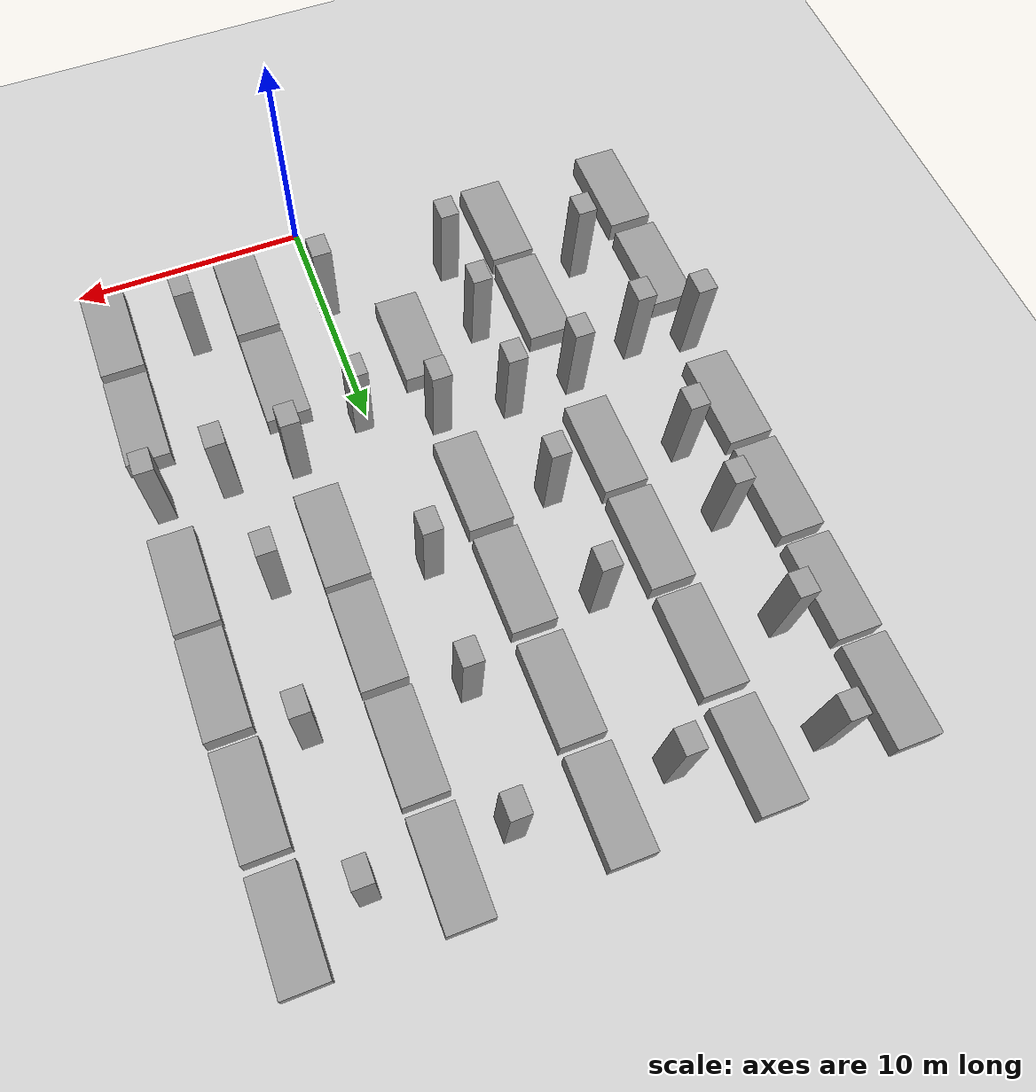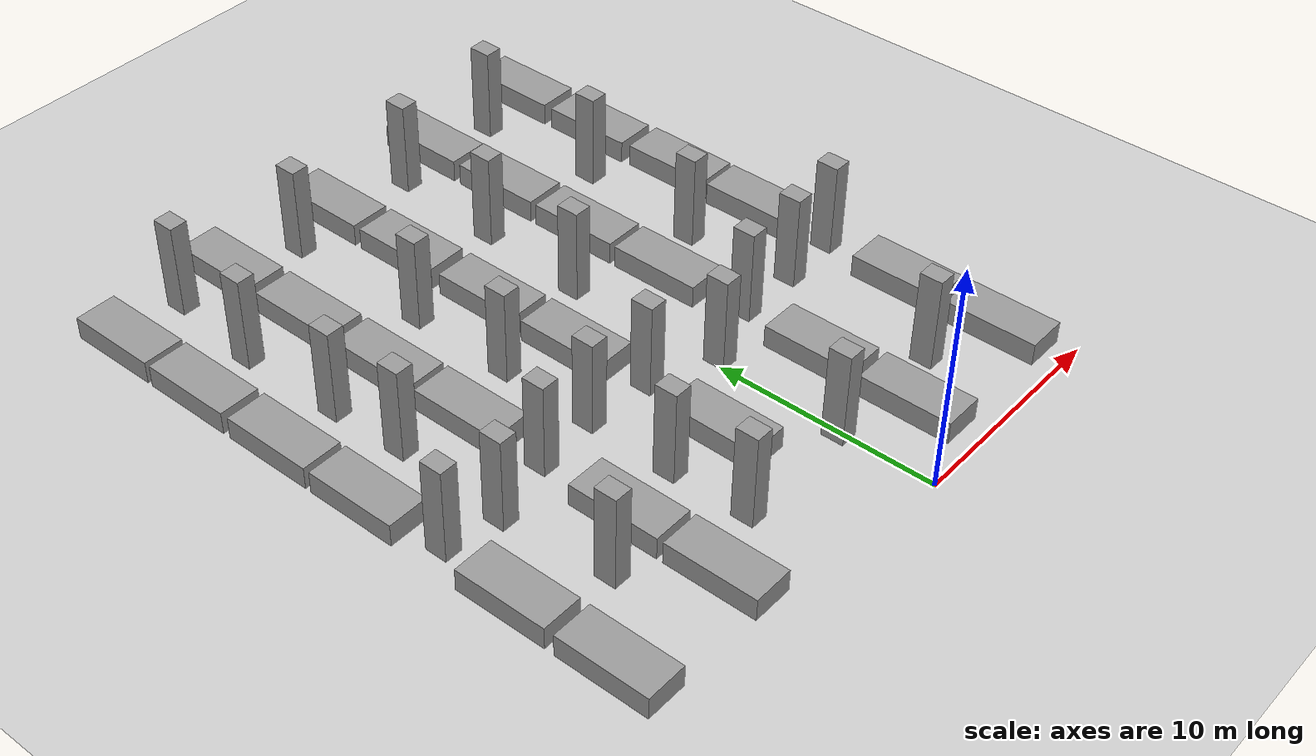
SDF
<sdf version="1.7">
 <world name="default">
  <model name="ground_plane">
   <static>1</static>
   <link name="link">
    <collision name="collision">
     <geometry><plane><normal>0 0 1</normal><size>100 100</size></plane></geometry>
     <surface>
      <contact><collide_bitmask>65535</collide_bitmask></contact>
      <friction><ode><mu>100</mu><mu2>50</mu2></ode></friction>
     </surface>
    </collision>
    <visual name="visual">
     <geometry><plane><normal>0 0 1</normal><size>100 100</size></plane></geometry>
     <material>
      <script><uri>file://media/materials/scripts/gazebo.material</uri><name>Gazebo/Grey</name></script>
     </material>
    </visual>
   </link>
  </model>
  <model name="unit_box_clone_clone_2">
   <pose>8.98237 2.93253 0.499996 0 -5e-06 -0.001041</pose>
   <link name="link">
    <inertial>
     <mass>1</mass>
     <inertia>
      <ixx>0.166667</ixx>
      <ixy>0</ixy>
      <ixz>0</ixz>
      <iyy>0.166667</iyy>
      <iyz>0</iyz>
      <izz>0.166667</izz>
     </inertia>
    </inertial>
    <collision name="collision"><geometry><box><size>1.85096 4.12993 1</size></box></geometry></collision>
    <visual name="visual">
     <geometry><box><size>1.85096 4.12993 1</size></box></geometry>
     <material>
      <script><name>Gazebo/Grey</name><uri>file://media/materials/scripts/gazebo.material</uri></script>
     </material>
    </visual>
   </link>
  </model>
  <model name="unit_box_clone_clone_4">
   <pose>8.98224 7.41455 0.5 0 -1e-06 -0.001076</pose>
   <link name="link">
    <inertial>
     <mass>1</mass>
     <inertia>
      <ixx>0.166667</ixx>
      <ixy>0</ixy>
      <ixz>0</ixz>
      <iyy>0.166667</iyy>
      <iyz>0</iyz>
      <izz>0.166667</izz>
     </inertia>
    </inertial>
    <collision name="collision"><geometry><box><size>1.85096 4.12993 1</size></box></geometry></collision>
    <visual name="visual">
     <geometry><box><size>1.85096 4.12993 1</size></box></geometry>
     <material>
      <script><name>Gazebo/Grey</name><uri>file://media/materials/scripts/gazebo.material</uri></script>
     </material>
    </visual>
   </link>
  </model>
  <model name="unit_box_clone_clone_5">
   <pose>8.98222 15.0009 0.5 0 -1e-06 0.00136</pose>
   <link name="link">
    <inertial>
     <mass>1</mass>
     <inertia>
      <ixx>0.166667</ixx>
      <ixy>0</ixy>
      <ixz>0</ixz>
      <iyy>0.166667</iyy>
      <iyz>0</iyz>
      <izz>0.166667</izz>
     </inertia>
    </inertial>
    <collision name="collision"><geometry><box><size>1.85096 4.12993 1</size></box></geometry></collision>
    <visual name="visual">
     <geometry><box><size>1.85096 4.12993 1</size></box></geometry>
     <material>
      <script><name>Gazebo/Grey</name><uri>file://media/materials/scripts/gazebo.material</uri></script>
     </material>
    </visual>
   </link>
  </model>
  <model name="unit_box_clone_clone_6">
   <pose>8.99544 19.3324 0.5 0 1e-06 0.001075</pose>
   <link name="link">
    <inertial>
     <mass>1</mass>
     <inertia>
      <ixx>0.166667</ixx>
      <ixy>0</ixy>
      <ixz>0</ixz>
      <iyy>0.166667</iyy>
      <iyz>0</iyz>
      <izz>0.166667</izz>
     </inertia>
    </inertial>
    <collision name="collision"><geometry><box><size>1.85096 4.12993 1</size></box></geometry></collision>
    <visual name="visual">
     <geometry><box><size>1.85096 4.12993 1</size></box></geometry>
     <material>
      <script><name>Gazebo/Grey</name><uri>file://media/materials/scripts/gazebo.material</uri></script>
     </material>
    </visual>
   </link>
  </model>
  <model name="unit_box_clone_clone_7">
   <pose>8.9102 23.8406 0.5 -0 -1e-06 0.0022</pose>
   <link name="link">
    <inertial>
     <mass>1</mass>
     <inertia>
      <ixx>0.166667</ixx>
      <ixy>0</ixy>
      <ixz>0</ixz>
      <iyy>0.166667</iyy>
      <iyz>0</iyz>
      <izz>0.166667</izz>
     </inertia>
    </inertial>
    <collision name="collision"><geometry><box><size>1.85096 4.12993 1</size></box></geometry></collision>
    <visual name="visual">
     <geometry><box><size>1.85096 4.12993 1</size></box></geometry>
     <material>
      <script><name>Gazebo/Grey</name><uri>file://media/materials/scripts/gazebo.material</uri></script>
     </material>
    </visual>
   </link>
  </model>
  <model name="unit_box_clone_clone_8">
   <pose>8.89401 28.3719 0.5 0 -1e-06 0.002603</pose>
   <link name="link">
    <inertial>
     <mass>1</mass>
     <inertia>
      <ixx>0.166667</ixx>
      <ixy>0</ixy>
      <ixz>0</ixz>
      <iyy>0.166667</iyy>
      <iyz>0</iyz>
      <izz>0.166667</izz>
     </inertia>
    </inertial>
    <collision name="collision"><geometry><box><size>1.85096 4.12993 1</size></box></geometry></collision>
    <visual name="visual">
     <geometry><box><size>1.85096 4.12993 1</size></box></geometry>
     <material>
      <script><name>Gazebo/Grey</name><uri>file://media/materials/scripts/gazebo.material</uri></script>
     </material>
    </visual>
   </link>
  </model>
  <model name="unit_box_clone_clone_10">
   <pose>3.08007 23.9434 0.5 0 1e-06 0.001733</pose>
   <link name="link">
    <inertial>
     <mass>1</mass>
     <inertia>
      <ixx>0.166667</ixx>
      <ixy>0</ixy>
      <ixz>0</ixz>
      <iyy>0.166667</iyy>
      <iyz>0</iyz>
      <izz>0.166667</izz>
     </inertia>
    </inertial>
    <collision name="collision"><geometry><box><size>1.85096 4.12993 1</size></box></geometry></collision>
    <visual name="visual">
     <geometry><box><size>1.85096 4.12993 1</size></box></geometry>
     <material>
      <script><name>Gazebo/Grey</name><uri>file://media/materials/scripts/gazebo.material</uri></script>
     </material>
    </visual>
   </link>
  </model>
  <model name="unit_box_clone_clone_11">
   <pose>3.08879 19.533 0.5 0 1e-06 -0.001462</pose>
   <link name="link">
    <inertial>
     <mass>1</mass>
     <inertia>
      <ixx>0.166667</ixx>
      <ixy>0</ixy>
      <ixz>0</ixz>
      <iyy>0.166667</iyy>
      <iyz>0</iyz>
      <izz>0.166667</izz>
     </inertia>
    </inertial>
    <collision name="collision"><geometry><box><size>1.85096 4.12993 1</size></box></geometry></collision>
    <visual name="visual">
     <geometry><box><size>1.85096 4.12993 1</size></box></geometry>
     <material>
      <script><name>Gazebo/Grey</name><uri>file://media/materials/scripts/gazebo.material</uri></script>
     </material>
    </visual>
   </link>
  </model>
  <model name="unit_box_clone_clone_12">
   <pose>3.07998 15.1593 0.499996 0 5e-06 0.000403</pose>
   <link name="link">
    <inertial>
     <mass>1</mass>
     <inertia>
      <ixx>0.166667</ixx>
      <ixy>0</ixy>
      <ixz>0</ixz>
      <iyy>0.166667</iyy>
      <iyz>0</iyz>
      <izz>0.166667</izz>
     </inertia>
    </inertial>
    <collision name="collision"><geometry><box><size>1.85096 4.12993 1</size></box></geometry></collision>
    <visual name="visual">
     <geometry><box><size>1.85096 4.12993 1</size></box></geometry>
     <material>
      <script><name>Gazebo/Grey</name><uri>file://media/materials/scripts/gazebo.material</uri></script>
     </material>
    </visual>
   </link>
  </model>
  <model name="unit_box_clone_clone_13">
   <pose>3.0803 7.42133 0.499996 0 -5e-06 0.000162</pose>
   <link name="link">
    <inertial>
     <mass>1</mass>
     <inertia>
      <ixx>0.166667</ixx>
      <ixy>0</ixy>
      <ixz>0</ixz>
      <iyy>0.166667</iyy>
      <iyz>0</iyz>
      <izz>0.166667</izz>
     </inertia>
    </inertial>
    <collision name="collision"><geometry><box><size>1.85096 4.12993 1</size></box></geometry></collision>
    <visual name="visual">
     <geometry><box><size>1.85096 4.12993 1</size></box></geometry>
     <material>
      <script><name>Gazebo/Grey</name><uri>file://media/materials/scripts/gazebo.material</uri></script>
     </material>
    </visual>
   </link>
  </model>
  <model name="unit_box_clone_clone_14">
   <pose>3.0803 2.93003 0.5 0 -1e-06 -0.000976</pose>
   <link name="link">
    <inertial>
     <mass>1</mass>
     <inertia>
      <ixx>0.166667</ixx>
      <ixy>0</ixy>
      <ixz>0</ixz>
      <iyy>0.166667</iyy>
      <iyz>0</iyz>
      <izz>0.166667</izz>
     </inertia>
    </inertial>
    <collision name="collision"><geometry><box><size>1.85096 4.12993 1</size></box></geometry></collision>
    <visual name="visual">
     <geometry><box><size>1.85096 4.12993 1</size></box></geometry>
     <material>
      <script><name>Gazebo/Grey</name><uri>file://media/materials/scripts/gazebo.material</uri></script>
     </material>
    </visual>
   </link>
  </model>
  <model name="unit_box_clone_clone_28">
   <pose>-2.93399 7.51229 0.5 -0 -1e-06 -0.005582</pose>
   <link name="link">
    <inertial>
     <mass>1</mass>
     <inertia>
      <ixx>0.166667</ixx>
      <ixy>0</ixy>
      <ixz>0</ixz>
      <iyy>0.166667</iyy>
      <iyz>0</iyz>
      <izz>0.166667</izz>
     </inertia>
    </inertial>
    <collision name="collision"><geometry><box><size>1.85096 4.12993 1</size></box></geometry></collision>
    <visual name="visual">
     <geometry><box><size>1.85096 4.12993 1</size></box></geometry>
     <material>
      <script><name>Gazebo/Grey</name><uri>file://media/materials/scripts/gazebo.material</uri></script>
     </material>
    </visual>
   </link>
  </model>
  <model name="unit_box_clone_clone_29">
   <pose>-2.93397 14.8688 0.499996 0 -5e-06 0.000452</pose>
   <link name="link">
    <inertial>
     <mass>1</mass>
     <inertia>
      <ixx>0.166667</ixx>
      <ixy>0</ixy>
      <ixz>0</ixz>
      <iyy>0.166667</iyy>
      <iyz>0</iyz>
      <izz>0.166667</izz>
     </inertia>
    </inertial>
    <collision name="collision"><geometry><box><size>1.85096 4.12993 1</size></box></geometry></collision>
    <visual name="visual">
     <geometry><box><size>1.85096 4.12993 1</size></box></geometry>
     <material>
      <script><name>Gazebo/Grey</name><uri>file://media/materials/scripts/gazebo.material</uri></script>
     </material>
    </visual>
   </link>
  </model>
  <model name="unit_box_clone_clone_30">
   <pose>-2.93397 19.3398 0.499996 0 5e-06 -0.000549</pose>
   <link name="link">
    <inertial>
     <mass>1</mass>
     <inertia>
      <ixx>0.166667</ixx>
      <ixy>0</ixy>
      <ixz>0</ixz>
      <iyy>0.166667</iyy>
      <iyz>0</iyz>
      <izz>0.166667</izz>
     </inertia>
    </inertial>
    <collision name="collision"><geometry><box><size>1.85096 4.12993 1</size></box></geometry></collision>
    <visual name="visual">
     <geometry><box><size>1.85096 4.12993 1</size></box></geometry>
     <material>
      <script><name>Gazebo/Grey</name><uri>file://media/materials/scripts/gazebo.material</uri></script>
     </material>
    </visual>
   </link>
  </model>
  <model name="unit_box_clone_clone_31">
   <pose>-2.93402 23.9223 0.5 0 1e-06 0.001463</pose>
   <link name="link">
    <inertial>
     <mass>1</mass>
     <inertia>
      <ixx>0.166667</ixx>
      <ixy>0</ixy>
      <ixz>0</ixz>
      <iyy>0.166667</iyy>
      <iyz>0</iyz>
      <izz>0.166667</izz>
     </inertia>
    </inertial>
    <collision name="collision"><geometry><box><size>1.85096 4.12993 1</size></box></geometry></collision>
    <visual name="visual">
     <geometry><box><size>1.85096 4.12993 1</size></box></geometry>
     <material>
      <script><name>Gazebo/Grey</name><uri>file://media/materials/scripts/gazebo.material</uri></script>
     </material>
    </visual>
   </link>
  </model>
  <model name="unit_box_clone_clone_32">
   <pose>-2.93451 28.3743 0.5 0 -1e-06 -0.00363</pose>
   <link name="link">
    <inertial>
     <mass>1</mass>
     <inertia>
      <ixx>0.166667</ixx>
      <ixy>0</ixy>
      <ixz>0</ixz>
      <iyy>0.166667</iyy>
      <iyz>0</iyz>
      <izz>0.166667</izz>
     </inertia>
    </inertial>
    <collision name="collision"><geometry><box><size>1.85096 4.12993 1</size></box></geometry></collision>
    <visual name="visual">
     <geometry><box><size>1.85096 4.12993 1</size></box></geometry>
     <material>
      <script><name>Gazebo/Grey</name><uri>file://media/materials/scripts/gazebo.material</uri></script>
     </material>
    </visual>
   </link>
  </model>
  <model name="unit_box_clone_clone_39">
   <pose>-8.58 3.00347 0.499996 0 5e-06 0.000267</pose>
   <link name="link">
    <inertial>
     <mass>1</mass>
     <inertia>
      <ixx>0.166667</ixx>
      <ixy>0</ixy>
      <ixz>0</ixz>
      <iyy>0.166667</iyy>
      <iyz>0</iyz>
      <izz>0.166667</izz>
     </inertia>
    </inertial>
    <collision name="collision"><geometry><box><size>1.85096 4.12993 1</size></box></geometry></collision>
    <visual name="visual">
     <geometry><box><size>1.85096 4.12993 1</size></box></geometry>
     <material>
      <script><name>Gazebo/Grey</name><uri>file://media/materials/scripts/gazebo.material</uri></script>
     </material>
    </visual>
   </link>
  </model>
  <model name="unit_box_clone_clone_40">
   <pose>-8.57999 7.40229 0.5 0 -1e-06 -0.000532</pose>
   <link name="link">
    <inertial>
     <mass>1</mass>
     <inertia>
      <ixx>0.166667</ixx>
      <ixy>0</ixy>
      <ixz>0</ixz>
      <iyy>0.166667</iyy>
      <iyz>0</iyz>
      <izz>0.166667</izz>
     </inertia>
    </inertial>
    <collision name="collision"><geometry><box><size>1.85096 4.12993 1</size></box></geometry></collision>
    <visual name="visual">
     <geometry><box><size>1.85096 4.12993 1</size></box></geometry>
     <material>
      <script><name>Gazebo/Grey</name><uri>file://media/materials/scripts/gazebo.material</uri></script>
     </material>
    </visual>
   </link>
  </model>
  <model name="unit_box_clone_clone_41">
   <pose>-8.58 15.161 0.499996 0 -5e-06 0.000305</pose>
   <link name="link">
    <inertial>
     <mass>1</mass>
     <inertia>
      <ixx>0.166667</ixx>
      <ixy>0</ixy>
      <ixz>0</ixz>
      <iyy>0.166667</iyy>
      <iyz>0</iyz>
      <izz>0.166667</izz>
     </inertia>
    </inertial>
    <collision name="collision"><geometry><box><size>1.85096 4.12993 1</size></box></geometry></collision>
    <visual name="visual">
     <geometry><box><size>1.85096 4.12993 1</size></box></geometry>
     <material>
      <script><name>Gazebo/Grey</name><uri>file://media/materials/scripts/gazebo.material</uri></script>
     </material>
    </visual>
   </link>
  </model>
  <model name="unit_box_clone_clone_42">
   <pose>-8.57999 19.5393 0.5 0 1e-06 -0.001511</pose>
   <link name="link">
    <inertial>
     <mass>1</mass>
     <inertia>
      <ixx>0.166667</ixx>
      <ixy>0</ixy>
      <ixz>0</ixz>
      <iyy>0.166667</iyy>
      <iyz>0</iyz>
      <izz>0.166667</izz>
     </inertia>
    </inertial>
    <collision name="collision"><geometry><box><size>1.85096 4.12993 1</size></box></geometry></collision>
    <visual name="visual">
     <geometry><box><size>1.85096 4.12993 1</size></box></geometry>
     <material>
      <script><name>Gazebo/Grey</name><uri>file://media/materials/scripts/gazebo.material</uri></script>
     </material>
    </visual>
   </link>
  </model>
  <model name="unit_box_clone_clone_43">
   <pose>-8.58 24.0344 0.499996 -0 5e-06 -0.000174</pose>
   <link name="link">
    <inertial>
     <mass>1</mass>
     <inertia>
      <ixx>0.166667</ixx>
      <ixy>0</ixy>
      <ixz>0</ixz>
      <iyy>0.166667</iyy>
      <iyz>0</iyz>
      <izz>0.166667</izz>
     </inertia>
    </inertial>
    <collision name="collision"><geometry><box><size>1.85096 4.12993 1</size></box></geometry></collision>
    <visual name="visual">
     <geometry><box><size>1.85096 4.12993 1</size></box></geometry>
     <material>
      <script><name>Gazebo/Grey</name><uri>file://media/materials/scripts/gazebo.material</uri></script>
     </material>
    </visual>
   </link>
  </model>
  <model name="unit_box_clone_clone_44">
   <pose>-8.57963 28.5864 0.5 0 1e-06 0.000832</pose>
   <link name="link">
    <inertial>
     <mass>1</mass>
     <inertia>
      <ixx>0.166667</ixx>
      <ixy>0</ixy>
      <ixz>0</ixz>
      <iyy>0.166667</iyy>
      <iyz>0</iyz>
      <izz>0.166667</izz>
     </inertia>
    </inertial>
    <collision name="collision"><geometry><box><size>1.85096 4.12993 1</size></box></geometry></collision>
    <visual name="visual">
     <geometry><box><size>1.85096 4.12993 1</size></box></geometry>
     <material>
      <script><name>Gazebo/Grey</name><uri>file://media/materials/scripts/gazebo.material</uri></script>
     </material>
    </visual>
   </link>
  </model>
  <model name="unit_box_clone_clone_45">
   <pose>-14.24 28.1685 0.499996 0 5e-06 0.001657</pose>
   <link name="link">
    <inertial>
     <mass>1</mass>
     <inertia>
      <ixx>0.166667</ixx>
      <ixy>0</ixy>
      <ixz>0</ixz>
      <iyy>0.166667</iyy>
      <iyz>0</iyz>
      <izz>0.166667</izz>
     </inertia>
    </inertial>
    <collision name="collision"><geometry><box><size>1.85096 4.12993 1</size></box></geometry></collision>
    <visual name="visual">
     <geometry><box><size>1.85096 4.12993 1</size></box></geometry>
     <material>
      <script><name>Gazebo/Grey</name><uri>file://media/materials/scripts/gazebo.material</uri></script>
     </material>
    </visual>
   </link>
  </model>
  <model name="unit_box_clone_clone_46">
   <pose>-14.24 23.7872 0.499996 0 5e-06 0.000206</pose>
   <link name="link">
    <inertial>
     <mass>1</mass>
     <inertia>
      <ixx>0.166667</ixx>
      <ixy>0</ixy>
      <ixz>0</ixz>
      <iyy>0.166667</iyy>
      <iyz>0</iyz>
      <izz>0.166667</izz>
     </inertia>
    </inertial>
    <collision name="collision"><geometry><box><size>1.85096 4.12993 1</size></box></geometry></collision>
    <visual name="visual">
     <geometry><box><size>1.85096 4.12993 1</size></box></geometry>
     <material>
      <script><name>Gazebo/Grey</name><uri>file://media/materials/scripts/gazebo.material</uri></script>
     </material>
    </visual>
   </link>
  </model>
  <model name="unit_box_clone_clone_47">
   <pose>-14.24 19.2992 0.499996 -0 -5e-06 1.6e-05</pose>
   <link name="link">
    <inertial>
     <mass>1</mass>
     <inertia>
      <ixx>0.166667</ixx>
      <ixy>0</ixy>
      <ixz>0</ixz>
      <iyy>0.166667</iyy>
      <iyz>0</iyz>
      <izz>0.166667</izz>
     </inertia>
    </inertial>
    <collision name="collision"><geometry><box><size>1.85096 4.12993 1</size></box></geometry></collision>
    <visual name="visual">
     <geometry><box><size>1.85096 4.12993 1</size></box></geometry>
     <material>
      <script><name>Gazebo/Grey</name><uri>file://media/materials/scripts/gazebo.material</uri></script>
     </material>
    </visual>
   </link>
  </model>
  <model name="unit_box_clone_clone_48">
   <pose>-14.24 14.8894 0.5 -0 -1e-06 0.00137</pose>
   <link name="link">
    <inertial>
     <mass>1</mass>
     <inertia>
      <ixx>0.166667</ixx>
      <ixy>0</ixy>
      <ixz>0</ixz>
      <iyy>0.166667</iyy>
      <iyz>0</iyz>
      <izz>0.166667</izz>
     </inertia>
    </inertial>
    <collision name="collision"><geometry><box><size>1.85096 4.12993 1</size></box></geometry></collision>
    <visual name="visual">
     <geometry><box><size>1.85096 4.12993 1</size></box></geometry>
     <material>
      <script><name>Gazebo/Grey</name><uri>file://media/materials/scripts/gazebo.material</uri></script>
     </material>
    </visual>
   </link>
  </model>
  <model name="unit_box_clone_clone_49">
   <pose>-14.24 7.61228 0.5 -0 -1e-06 0.002439</pose>
   <link name="link">
    <inertial>
     <mass>1</mass>
     <inertia>
      <ixx>0.166667</ixx>
      <ixy>0</ixy>
      <ixz>0</ixz>
      <iyy>0.166667</iyy>
      <iyz>0</iyz>
      <izz>0.166667</izz>
     </inertia>
    </inertial>
    <collision name="collision"><geometry><box><size>1.85096 4.12993 1</size></box></geometry></collision>
    <visual name="visual">
     <geometry><box><size>1.85096 4.12993 1</size></box></geometry>
     <material>
      <script><name>Gazebo/Grey</name><uri>file://media/materials/scripts/gazebo.material</uri></script>
     </material>
    </visual>
   </link>
  </model>
  <model name="unit_box_clone_clone_50">
   <pose>-14.24 3.06089 0.499996 -0 5e-06 -0.00044</pose>
   <link name="link">
    <inertial>
     <mass>1</mass>
     <inertia>
      <ixx>0.166667</ixx>
      <ixy>0</ixy>
      <ixz>0</ixz>
      <iyy>0.166667</iyy>
      <iyz>0</iyz>
      <izz>0.166667</izz>
     </inertia>
    </inertial>
    <collision name="collision"><geometry><box><size>1.85096 4.12993 1</size></box></geometry></collision>
    <visual name="visual">
     <geometry><box><size>1.85096 4.12993 1</size></box></geometry>
     <material>
      <script><name>Gazebo/Grey</name><uri>file://media/materials/scripts/gazebo.material</uri></script>
     </material>
    </visual>
   </link>
  </model>
  <model name="unit_box_clone_clone_32_clone">
   <pose>3.08 28.4159 0.5 -0 1e-06 -0.002997</pose>
   <link name="link">
    <inertial>
     <mass>1</mass>
     <inertia>
      <ixx>0.166667</ixx>
      <ixy>0</ixy>
      <ixz>0</ixz>
      <iyy>0.166667</iyy>
      <iyz>0</iyz>
      <izz>0.166667</izz>
     </inertia>
    </inertial>
    <collision name="collision"><geometry><box><size>1.85096 4.12993 1</size></box></geometry></collision>
    <visual name="visual">
     <geometry><box><size>1.85096 4.12993 1</size></box></geometry>
     <material>
      <script><name>Gazebo/Grey</name><uri>file://media/materials/scripts/gazebo.material</uri></script>
     </material>
    </visual>
   </link>
  </model>
  <model name="warehouse_pillar_4">
   <pose>5.6479 16.0921 2.2 0 -0 0.001173</pose>
   <link name="link">
    <inertial>
     <mass>1</mass>
     <inertia>
      <ixx>0.166667</ixx>
      <ixy>0</ixy>
      <ixz>0</ixz>
      <iyy>0.166667</iyy>
      <iyz>0</iyz>
      <izz>0.166667</izz>
     </inertia>
    </inertial>
    <collision name="collision"><geometry><box><size>0.803786 1 4.26698</size></box></geometry></collision>
    <visual name="visual">
     <geometry><box><size>0.803786 1 4.26698</size></box></geometry>
     <material>
      <script><name>Gazebo/Grey</name><uri>file://media/materials/scripts/gazebo.material</uri></script>
     </material>
    </visual>
    <gravity>0</gravity>
   </link>
  </model>
  <model name="warehouse_pillar_3">
   <pose>5.6 4.17252 2.2 0 -0 0.00112</pose>
   <link name="link">
    <inertial>
     <mass>1</mass>
     <inertia>
      <ixx>0.166667</ixx>
      <ixy>0</ixy>
      <ixz>0</ixz>
      <iyy>0.166667</iyy>
      <iyz>0</iyz>
      <izz>0.166667</izz>
     </inertia>
    </inertial>
    <collision name="collision"><geometry><box><size>0.803786 1 4.26698</size></box></geometry></collision>
    <visual name="visual">
     <geometry><box><size>0.803786 1 4.26698</size></box></geometry>
     <material>
      <script><name>Gazebo/Grey</name><uri>file://media/materials/scripts/gazebo.material</uri></script>
     </material>
    </visual>
    <gravity>0</gravity>
   </link>
  </model>
  <model name="warehouse_pillar_10">
   <pose>0.59196 27.7316 2.2 -1e-06 -0 -0.000276</pose>
   <link name="link">
    <inertial>
     <mass>1</mass>
     <inertia>
      <ixx>0.166667</ixx>
      <ixy>0</ixy>
      <ixz>0</ixz>
      <iyy>0.166667</iyy>
      <iyz>0</iyz>
      <izz>0.166667</izz>
     </inertia>
    </inertial>
    <collision name="collision"><geometry><box><size>0.803786 1 4.26698</size></box></geometry></collision>
    <visual name="visual">
     <geometry><box><size>0.803786 1 4.26698</size></box></geometry>
     <material>
      <script><name>Gazebo/Grey</name><uri>file://media/materials/scripts/gazebo.material</uri></script>
     </material>
    </visual>
    <gravity>0</gravity>
   </link>
  </model>
  <model name="warehouse_pillar_9">
   <pose>-0.188495 17.3635 2.2 0 0 -0.001207</pose>
   <link name="link">
    <inertial>
     <mass>1</mass>
     <inertia>
      <ixx>0.166667</ixx>
      <ixy>0</ixy>
      <ixz>0</ixz>
      <iyy>0.166667</iyy>
      <iyz>0</iyz>
      <izz>0.166667</izz>
     </inertia>
    </inertial>
    <collision name="collision"><geometry><box><size>0.803786 1 4.26698</size></box></geometry></collision>
    <visual name="visual">
     <geometry><box><size>0.803786 1 4.26698</size></box></geometry>
     <material>
      <script><name>Gazebo/Grey</name><uri>file://media/materials/scripts/gazebo.material</uri></script>
     </material>
    </visual>
    <gravity>0</gravity>
   </link>
  </model>
  <model name="warehouse_pillar_8">
   <pose>-0.176316 4.23076 2.2 -1e-06 -0 -0.00123</pose>
   <link name="link">
    <inertial>
     <mass>1</mass>
     <inertia>
      <ixx>0.166667</ixx>
      <ixy>0</ixy>
      <ixz>0</ixz>
      <iyy>0.166667</iyy>
      <iyz>0</iyz>
      <izz>0.166667</izz>
     </inertia>
    </inertial>
    <collision name="collision"><geometry><box><size>0.803786 1 4.26698</size></box></geometry></collision>
    <visual name="visual">
     <geometry><box><size>0.803786 1 4.26698</size></box></geometry>
     <material>
      <script><name>Gazebo/Grey</name><uri>file://media/materials/scripts/gazebo.material</uri></script>
     </material>
    </visual>
    <gravity>0</gravity>
   </link>
  </model>
  <model name="warehouse_pillar_15">
   <pose>-5.58562 27.783 2.2 0 0 -0.000724</pose>
   <link name="link">
    <inertial>
     <mass>1</mass>
     <inertia>
      <ixx>0.166667</ixx>
      <ixy>0</ixy>
      <ixz>0</ixz>
      <iyy>0.166667</iyy>
      <iyz>0</iyz>
      <izz>0.166667</izz>
     </inertia>
    </inertial>
    <collision name="collision"><geometry><box><size>0.803786 1 4.26698</size></box></geometry></collision>
    <visual name="visual">
     <geometry><box><size>0.803786 1 4.26698</size></box></geometry>
     <material>
      <script><name>Gazebo/Grey</name><uri>file://media/materials/scripts/gazebo.material</uri></script>
     </material>
    </visual>
    <gravity>0</gravity>
   </link>
  </model>
  <model name="warehouse_pillar_14">
   <pose>-5.77487 11.6967 2.2 -1e-06 -0 -0.001234</pose>
   <link name="link">
    <inertial>
     <mass>1</mass>
     <inertia>
      <ixx>0.166667</ixx>
      <ixy>0</ixy>
      <ixz>0</ixz>
      <iyy>0.166667</iyy>
      <iyz>0</iyz>
      <izz>0.166667</izz>
     </inertia>
    </inertial>
    <collision name="collision"><geometry><box><size>0.803786 1 4.26698</size></box></geometry></collision>
    <visual name="visual">
     <geometry><box><size>0.803786 1 4.26698</size></box></geometry>
     <material>
      <script><name>Gazebo/Grey</name><uri>file://media/materials/scripts/gazebo.material</uri></script>
     </material>
    </visual>
    <gravity>0</gravity>
   </link>
  </model>
  <model name="warehouse_pillar_13">
   <pose>-5.75221 4.17001 2.2 0 0 -0.001233</pose>
   <link name="link">
    <inertial>
     <mass>1</mass>
     <inertia>
      <ixx>0.166667</ixx>
      <ixy>0</ixy>
      <ixz>0</ixz>
      <iyy>0.166667</iyy>
      <iyz>0</iyz>
      <izz>0.166667</izz>
     </inertia>
    </inertial>
    <collision name="collision"><geometry><box><size>0.803786 1 4.26698</size></box></geometry></collision>
    <visual name="visual">
     <geometry><box><size>0.803786 1 4.26698</size></box></geometry>
     <material>
      <script><name>Gazebo/Grey</name><uri>file://media/materials/scripts/gazebo.material</uri></script>
     </material>
    </visual>
    <gravity>0</gravity>
   </link>
  </model>
  <model name="warehouse_pillar_18">
   <pose>-11.1848 5.96285 2.2 -1e-06 -0 -0.000598</pose>
   <link name="link">
    <inertial>
     <mass>1</mass>
     <inertia>
      <ixx>0.166667</ixx>
      <ixy>0</ixy>
      <ixz>0</ixz>
      <iyy>0.166667</iyy>
      <iyz>0</iyz>
      <izz>0.166667</izz>
     </inertia>
    </inertial>
    <collision name="collision"><geometry><box><size>0.803786 1 4.26698</size></box></geometry></collision>
    <visual name="visual">
     <geometry><box><size>0.803786 1 4.26698</size></box></geometry>
     <material>
      <script><name>Gazebo/Grey</name><uri>file://media/materials/scripts/gazebo.material</uri></script>
     </material>
    </visual>
    <gravity>0</gravity>
   </link>
  </model>
  <model name="warehouse_pillar_19">
   <pose>-11.4692 16 2.2 0 0 -0.001234</pose>
   <link name="link">
    <inertial>
     <mass>1</mass>
     <inertia>
      <ixx>0.166667</ixx>
      <ixy>0</ixy>
      <ixz>0</ixz>
      <iyy>0.166667</iyy>
      <iyz>0</iyz>
      <izz>0.166667</izz>
     </inertia>
    </inertial>
    <collision name="collision"><geometry><box><size>0.803786 1 4.26698</size></box></geometry></collision>
    <visual name="visual">
     <geometry><box><size>0.803786 1 4.26698</size></box></geometry>
     <material>
      <script><name>Gazebo/Grey</name><uri>file://media/materials/scripts/gazebo.material</uri></script>
     </material>
    </visual>
    <gravity>0</gravity>
   </link>
  </model>
  <model name="warehouse_pillar_20">
   <pose>-11.2115 28.6253 2.2 0 0 -0.000283</pose>
   <link name="link">
    <inertial>
     <mass>1</mass>
     <inertia>
      <ixx>0.166667</ixx>
      <ixy>0</ixy>
      <ixz>0</ixz>
      <iyy>0.166667</iyy>
      <iyz>0</iyz>
      <izz>0.166667</izz>
     </inertia>
    </inertial>
    <collision name="collision"><geometry><box><size>0.803786 1 4.26698</size></box></geometry></collision>
    <visual name="visual">
     <geometry><box><size>0.803786 1 4.26698</size></box></geometry>
     <material>
      <script><name>Gazebo/Grey</name><uri>file://media/materials/scripts/gazebo.material</uri></script>
     </material>
    </visual>
    <gravity>0</gravity>
   </link>
  </model>
  <model name="warehouse_pillar_15_clone">
   <pose>-5.65863 20.8735 2.2 0 0 -0.000724</pose>
   <link name="link">
    <inertial>
     <mass>1</mass>
     <inertia>
      <ixx>0.166667</ixx>
      <ixy>0</ixy>
      <ixz>0</ixz>
      <iyy>0.166667</iyy>
      <iyz>0</iyz>
      <izz>0.166667</izz>
     </inertia>
    </inertial>
    <collision name="collision"><geometry><box><size>0.803786 1 4.26698</size></box></geometry></collision>
    <visual name="visual">
     <geometry><box><size>0.803786 1 4.26698</size></box></geometry>
     <material>
      <script><name>Gazebo/Grey</name><uri>file://media/materials/scripts/gazebo.material</uri></script>
     </material>
    </visual>
    <gravity>0</gravity>
   </link>
  </model>
  <model name="warehouse_pillar_15_clone_4">
   <pose>0.266234 10.2128 2.2 0 0 -0.000724</pose>
   <link name="link">
    <inertial>
     <mass>1</mass>
     <inertia>
      <ixx>0.166667</ixx>
      <ixy>0</ixy>
      <ixz>0</ixz>
      <iyy>0.166667</iyy>
      <iyz>0</iyz>
      <izz>0.166667</izz>
     </inertia>
    </inertial>
    <collision name="collision"><geometry><box><size>0.803786 1 4.26698</size></box></geometry></collision>
    <visual name="visual">
     <geometry><box><size>0.803786 1 4.26698</size></box></geometry>
     <material>
      <script><name>Gazebo/Grey</name><uri>file://media/materials/scripts/gazebo.material</uri></script>
     </material>
    </visual>
    <gravity>0</gravity>
   </link>
  </model>
  <model name="warehouse_pillar_15_clone_5">
   <pose>0.204247 22.4591 2.2 0 0 -0.000724</pose>
   <link name="link">
    <inertial>
     <mass>1</mass>
     <inertia>
      <ixx>0.166667</ixx>
      <ixy>0</ixy>
      <ixz>0</ixz>
      <iyy>0.166667</iyy>
      <iyz>0</iyz>
      <izz>0.166667</izz>
     </inertia>
    </inertial>
    <collision name="collision"><geometry><box><size>0.803786 1 4.26698</size></box></geometry></collision>
    <visual name="visual">
     <geometry><box><size>0.803786 1 4.26698</size></box></geometry>
     <material>
      <script><name>Gazebo/Grey</name><uri>file://media/materials/scripts/gazebo.material</uri></script>
     </material>
    </visual>
    <gravity>0</gravity>
   </link>
  </model>
  <model name="warehouse_pillar_15_clone_6">
   <pose>-5.73065 16.0907 2.2 0 0 -0.000724</pose>
   <link name="link">
    <inertial>
     <mass>1</mass>
     <inertia>
      <ixx>0.166667</ixx>
      <ixy>0</ixy>
      <ixz>0</ixz>
      <iyy>0.166667</iyy>
      <iyz>0</iyz>
      <izz>0.166667</izz>
     </inertia>
    </inertial>
    <collision name="collision"><geometry><box><size>0.803786 1 4.26698</size></box></geometry></collision>
    <visual name="visual">
     <geometry><box><size>0.803786 1 4.26698</size></box></geometry>
     <material>
      <script><name>Gazebo/Grey</name><uri>file://media/materials/scripts/gazebo.material</uri></script>
     </material>
    </visual>
    <gravity>0</gravity>
   </link>
  </model>
  <model name="warehouse_pillar_15_clone_16">
   <pose>6.2071 11.2486 2.2 0 0 -0.000724</pose>
   <link name="link">
    <inertial>
     <mass>1</mass>
     <inertia>
      <ixx>0.166667</ixx>
      <ixy>0</ixy>
      <ixz>0</ixz>
      <iyy>0.166667</iyy>
      <iyz>0</iyz>
      <izz>0.166667</izz>
     </inertia>
    </inertial>
    <collision name="collision"><geometry><box><size>0.803786 1 4.26698</size></box></geometry></collision>
    <visual name="visual">
     <geometry><box><size>0.803786 1 4.26698</size></box></geometry>
     <material>
      <script><name>Gazebo/Grey</name><uri>file://media/materials/scripts/gazebo.material</uri></script>
     </material>
    </visual>
    <gravity>0</gravity>
   </link>
  </model>
  <model name="warehouse_pillar_15_clone_17">
   <pose>6.25699 22.0849 2.2 0 0 -0.000724</pose>
   <link name="link">
    <inertial>
     <mass>1</mass>
     <inertia>
      <ixx>0.166667</ixx>
      <ixy>0</ixy>
      <ixz>0</ixz>
      <iyy>0.166667</iyy>
      <iyz>0</iyz>
      <izz>0.166667</izz>
     </inertia>
    </inertial>
    <collision name="collision"><geometry><box><size>0.803786 1 4.26698</size></box></geometry></collision>
    <visual name="visual">
     <geometry><box><size>0.803786 1 4.26698</size></box></geometry>
     <material>
      <script><name>Gazebo/Grey</name><uri>file://media/materials/scripts/gazebo.material</uri></script>
     </material>
    </visual>
    <gravity>0</gravity>
   </link>
  </model>
  <model name="warehouse_pillar_15_clone_18">
   <pose>-11.7177 24.1739 2.2 0 0 -0.000724</pose>
   <link name="link">
    <inertial>
     <mass>1</mass>
     <inertia>
      <ixx>0.166667</ixx>
      <ixy>0</ixy>
      <ixz>0</ixz>
      <iyy>0.166667</iyy>
      <iyz>0</iyz>
      <izz>0.166667</izz>
     </inertia>
    </inertial>
    <collision name="collision"><geometry><box><size>0.803786 1 4.26698</size></box></geometry></collision>
    <visual name="visual">
     <geometry><box><size>0.803786 1 4.26698</size></box></geometry>
     <material>
      <script><name>Gazebo/Grey</name><uri>file://media/materials/scripts/gazebo.material</uri></script>
     </material>
    </visual>
    <gravity>0</gravity>
   </link>
  </model>
  <model name="warehouse_pillar_15_clone_19">
   <pose>-11.6878 10.7555 2.2 0 0 -0.000724</pose>
   <link name="link">
    <inertial>
     <mass>1</mass>
     <inertia>
      <ixx>0.166667</ixx>
      <ixy>0</ixy>
      <ixz>0</ixz>
      <iyy>0.166667</iyy>
      <iyz>0</iyz>
      <izz>0.166667</izz>
     </inertia>
    </inertial>
    <collision name="collision"><geometry><box><size>0.803786 1 4.26698</size></box></geometry></collision>
    <visual name="visual">
     <geometry><box><size>0.803786 1 4.26698</size></box></geometry>
     <material>
      <script><name>Gazebo/Grey</name><uri>file://media/materials/scripts/gazebo.material</uri></script>
     </material>
    </visual>
    <gravity>0</gravity>
   </link>
  </model>
  <model name="warehouse_pillar_15_clone_21">
   <pose>-14.1061 11.2609 2.2 0 0 -0.000724</pose>
   <link name="link">
    <inertial>
     <mass>1</mass>
     <inertia>
      <ixx>0.166667</ixx>
      <ixy>0</ixy>
      <ixz>0</ixz>
      <iyy>0.166667</iyy>
      <iyz>0</iyz>
      <izz>0.166667</izz>
     </inertia>
    </inertial>
    <collision name="collision"><geometry><box><size>0.803786 1 4.26698</size></box></geometry></collision>
    <visual name="visual">
     <geometry><box><size>0.803786 1 4.26698</size></box></geometry>
     <material>
      <script><name>Gazebo/Grey</name><uri>file://media/materials/scripts/gazebo.material</uri></script>
     </material>
    </visual>
    <gravity>0</gravity>
   </link>
  </model>
  <model name="warehouse_pillar_15_clone_22">
   <pose>-2.73192 11.4187 2.2 0 0 -0.000724</pose>
   <link name="link">
    <inertial>
     <mass>1</mass>
     <inertia>
      <ixx>0.166667</ixx>
      <ixy>0</ixy>
      <ixz>0</ixz>
      <iyy>0.166667</iyy>
      <iyz>0</iyz>
      <izz>0.166667</izz>
     </inertia>
    </inertial>
    <collision name="collision"><geometry><box><size>0.803786 1 4.26698</size></box></geometry></collision>
    <visual name="visual">
     <geometry><box><size>0.803786 1 4.26698</size></box></geometry>
     <material>
      <script><name>Gazebo/Grey</name><uri>file://media/materials/scripts/gazebo.material</uri></script>
     </material>
    </visual>
    <gravity>0</gravity>
   </link>
  </model>
  <model name="warehouse_pillar_15_clone_24">
   <pose>-5.84521 7.71205 2.2 0 0 -0.000724</pose>
   <link name="link">
    <inertial>
     <mass>1</mass>
     <inertia>
      <ixx>0.166667</ixx>
      <ixy>0</ixy>
      <ixz>0</ixz>
      <iyy>0.166667</iyy>
      <iyz>0</iyz>
      <izz>0.166667</izz>
     </inertia>
    </inertial>
    <collision name="collision"><geometry><box><size>0.803786 1 4.26698</size></box></geometry></collision>
    <visual name="visual">
     <geometry><box><size>0.803786 1 4.26698</size></box></geometry>
     <material>
      <script><name>Gazebo/Grey</name><uri>file://media/materials/scripts/gazebo.material</uri></script>
     </material>
    </visual>
    <gravity>0</gravity>
   </link>
  </model>
  <model name="warehouse_pillar_15_clone_28">
   <pose>8.97421 11.4262 2.2 0 0 -0.000724</pose>
   <link name="link">
    <inertial>
     <mass>1</mass>
     <inertia>
      <ixx>0.166667</ixx>
      <ixy>0</ixy>
      <ixz>0</ixz>
      <iyy>0.166667</iyy>
      <iyz>0</iyz>
      <izz>0.166667</izz>
     </inertia>
    </inertial>
    <collision name="collision"><geometry><box><size>0.803786 1 4.26698</size></box></geometry></collision>
    <visual name="visual">
     <geometry><box><size>0.803786 1 4.26698</size></box></geometry>
     <material>
      <script><name>Gazebo/Grey</name><uri>file://media/materials/scripts/gazebo.material</uri></script>
     </material>
    </visual>
    <gravity>0</gravity>
   </link>
  </model>
  <model name="warehouse_pillar_15_clone_29">
   <pose>-8.65916 11.5163 2.2 0 0 -0.000724</pose>
   <link name="link">
    <inertial>
     <mass>1</mass>
     <inertia>
      <ixx>0.166667</ixx>
      <ixy>0</ixy>
      <ixz>0</ixz>
      <iyy>0.166667</iyy>
      <iyz>0</iyz>
      <izz>0.166667</izz>
     </inertia>
    </inertial>
    <collision name="collision"><geometry><box><size>0.803786 1 4.26698</size></box></geometry></collision>
    <visual name="visual">
     <geometry><box><size>0.803786 1 4.26698</size></box></geometry>
     <material>
      <script><name>Gazebo/Grey</name><uri>file://media/materials/scripts/gazebo.material</uri></script>
     </material>
    </visual>
    <gravity>0</gravity>
   </link>
  </model>
  <model name="warehouse_pillar_15_clone_30">
   <pose>-11.6175 19.4041 2.2 0 0 -0.000724</pose>
   <link name="link">
    <inertial>
     <mass>1</mass>
     <inertia>
      <ixx>0.166667</ixx>
      <ixy>0</ixy>
      <ixz>0</ixz>
      <iyy>0.166667</iyy>
      <iyz>0</iyz>
      <izz>0.166667</izz>
     </inertia>
    </inertial>
    <collision name="collision"><geometry><box><size>0.803786 1 4.26698</size></box></geometry></collision>
    <visual name="visual">
     <geometry><box><size>0.803786 1 4.26698</size></box></geometry>
     <material>
      <script><name>Gazebo/Grey</name><uri>file://media/materials/scripts/gazebo.material</uri></script>
     </material>
    </visual>
    <gravity>0</gravity>
   </link>
  </model>
  <model name="warehouse_pillar_15_clone_31">
   <link name="link">
    <inertial>
     <mass>1</mass>
     <inertia>
      <ixx>0.166667</ixx>
      <ixy>0</ixy>
      <ixz>0</ixz>
      <iyy>0.166667</iyy>
      <iyz>0</iyz>
      <izz>0.166667</izz>
     </inertia>
    </inertial>
    <visual name="visual">
     <geometry><box><size>0.803786 1 4.26698</size></box></geometry>
     <material>
      <script><name>Gazebo/Grey</name><uri>file://media/materials/scripts/gazebo.material</uri></script>
      <shader type="pixel"/>
     </material>
    </visual>
    <collision name="collision">
     <geometry><box><size>0.803786 1 4.26698</size></box></geometry>
     <surface>
      <friction>
       <ode><mu>1</mu><mu2>1</mu2><fdir1>0 0 0</fdir1><slip1>0</slip1><slip2>0</slip2></ode>
       <torsional>
        <coefficient>1</coefficient>
        <patch_radius>0</patch_radius>
        <surface_radius>0</surface_radius>
        <use_patch_radius>1</use_patch_radius>
        <ode><slip>0</slip></ode>
       </torsional>
      </friction>
      <bounce><restitution_coefficient>0</restitution_coefficient><threshold>1e+06</threshold></bounce>
      <contact>
       <collide_without_contact>0</collide_without_contact>
       <collide_without_contact_bitmask>1</collide_without_contact_bitmask>
       <collide_bitmask>1</collide_bitmask>
       <ode>
        <soft_cfm>0</soft_cfm>
        <soft_erp>0.2</soft_erp>
        <kp>1e+13</kp>
        <kd>1</kd>
        <max_vel>0.01</max_vel>
        <min_depth>0</min_depth>
       </ode>
       <bullet>
        <split_impulse>1</split_impulse>
        <split_impulse_penetration_threshold>-0.01</split_impulse_penetration_threshold>
        <soft_cfm>0</soft_cfm>
        <soft_erp>0.2</soft_erp>
        <kp>1e+13</kp>
        <kd>1</kd>
       </bullet>
      </contact>
     </surface>
    </collision>
   </link>
   <static>0</static>
   <pose>6.01725 27.9609 2.13349 1e-06 -0 0.001055</pose>
  </model>
  <model name="warehouse_pillar_0">
   <link name="link">
    <inertial>
     <mass>1</mass>
     <inertia>
      <ixx>0.166667</ixx>
      <ixy>0</ixy>
      <ixz>0</ixz>
      <iyy>0.166667</iyy>
      <iyz>0</iyz>
      <izz>0.166667</izz>
     </inertia>
    </inertial>
    <visual name="visual">
     <geometry><box><size>0.803786 1 4.26698</size></box></geometry>
     <material>
      <script><name>Gazebo/Grey</name><uri>file://media/materials/scripts/gazebo.material</uri></script>
      <shader type="pixel"/>
     </material>
    </visual>
    <collision name="collision">
     <geometry><box><size>0.803786 1 4.26698</size></box></geometry>
     <surface>
      <friction>
       <ode><mu>1</mu><mu2>1</mu2><fdir1>0 0 0</fdir1><slip1>0</slip1><slip2>0</slip2></ode>
       <torsional>
        <coefficient>1</coefficient>
        <patch_radius>0</patch_radius>
        <surface_radius>0</surface_radius>
        <use_patch_radius>1</use_patch_radius>
        <ode><slip>0</slip></ode>
       </torsional>
      </friction>
      <bounce><restitution_coefficient>0</restitution_coefficient><threshold>1e+06</threshold></bounce>
      <contact>
       <collide_without_contact>0</collide_without_contact>
       <collide_without_contact_bitmask>1</collide_without_contact_bitmask>
       <collide_bitmask>1</collide_bitmask>
       <ode>
        <soft_cfm>0</soft_cfm>
        <soft_erp>0.2</soft_erp>
        <kp>1e+13</kp>
        <kd>1</kd>
        <max_vel>0.01</max_vel>
        <min_depth>0</min_depth>
       </ode>
       <bullet>
        <split_impulse>1</split_impulse>
        <split_impulse_penetration_threshold>-0.01</split_impulse_penetration_threshold>
        <soft_cfm>0</soft_cfm>
        <soft_erp>0.2</soft_erp>
        <kp>1e+13</kp>
        <kd>1</kd>
       </bullet>
      </contact>
     </surface>
    </collision>
   </link>
   <static>0</static>
   <pose>3.33133 11.3141 2.13349 1e-06 0 -0.000175</pose>
  </model>
 </world>
</sdf>
